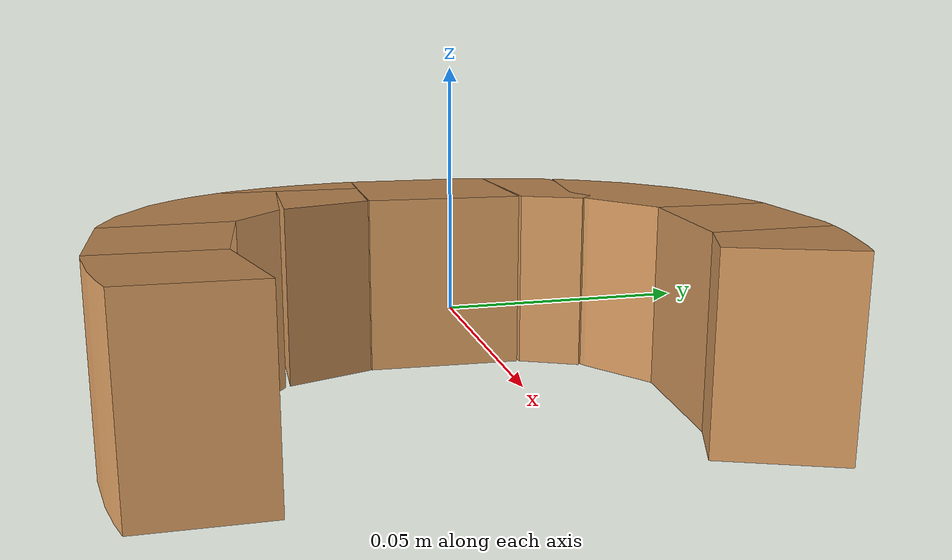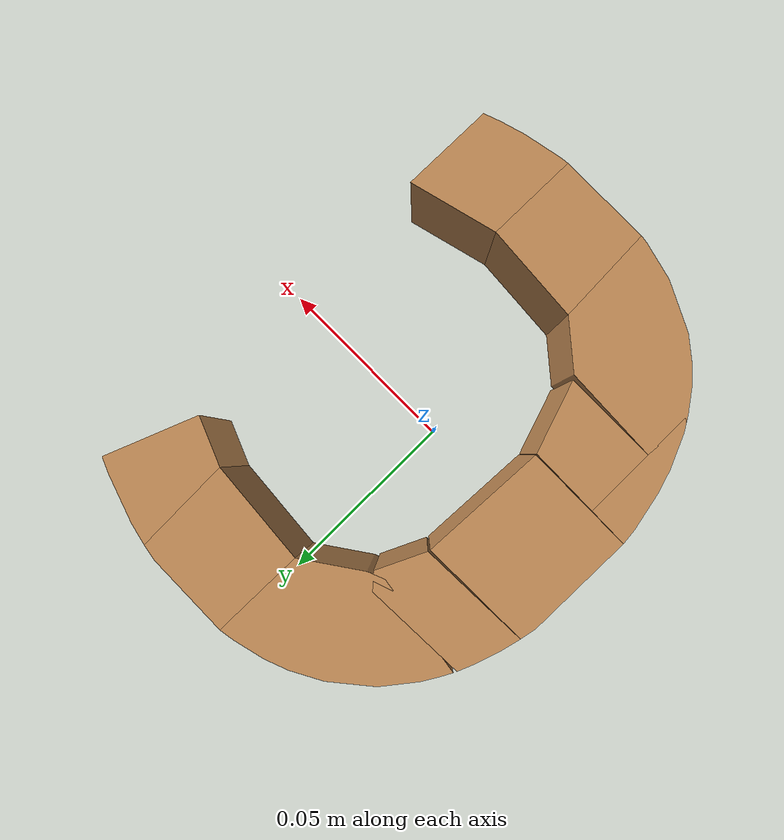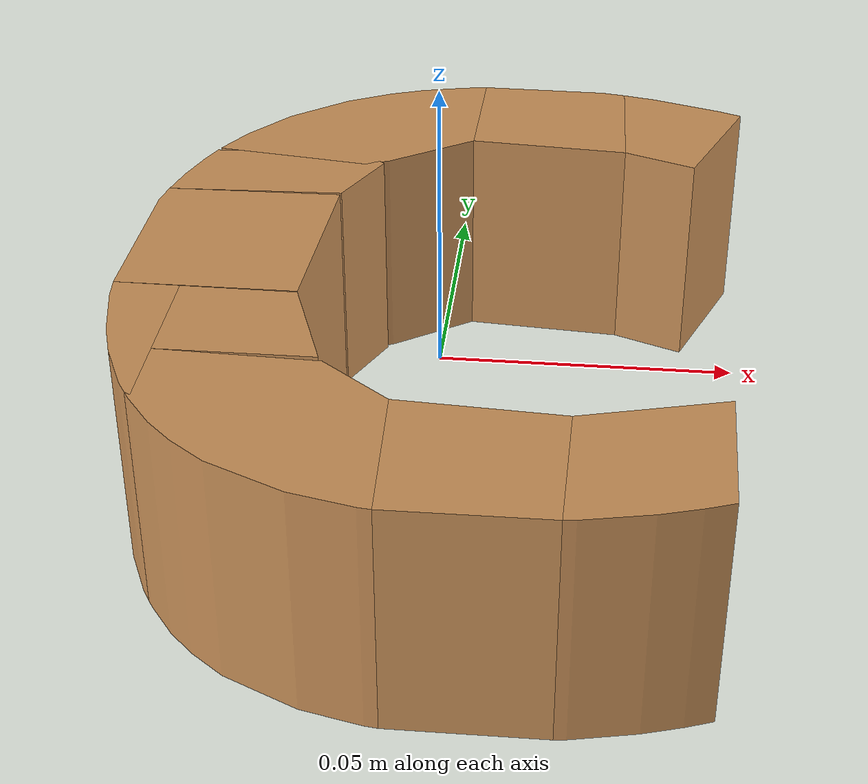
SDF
<?xml version='1.0' encoding='UTF-8'?>
<!-- This SDF was autogenerated by obj_to_drake_sdf.py -->
<sdf version="1.7">
  <model name="smaller_c">
    <link name="smaller_c">
      <inertial>
        <pose>0 0 0 0 0 0</pose>
        <mass>0.2</mass>
        <inertia>
          <ixx>0.00045602505</ixx>
          <iyy>0.000186063</iyy>
          <izz>0.00058875471</izz>
          <ixy>-7.928974e-06</ixy>
          <ixz>9.4686308e-22</ixz>
          <iyz>-2.6563776e-21</iyz>
        </inertia>
      </inertial>
      <visual name="convex_0">
        <pose>0 0 0 0 0 0</pose>
        <geometry>
          <mesh>
            <uri>smaller_c_convex_0.obj</uri>
          </mesh>
        </geometry>
        <material>
          <diffuse>0.7843137254901961 0.5647058823529412 0.34509803921568627 1</diffuse>
        </material>
      </visual>
      <collision name="convex_0_volume">
        <pose>0 0 0 0 0 0</pose>
        <geometry>
          <mesh>
            <uri>smaller_c_convex_0.obj</uri>
          </mesh>
        </geometry>
        <drake:proximity_properties xmlns:drake="uri:drake">
          <drake:compliant_hydroelastic/>
          <drake:hydroelastic_modulus> 3.0e7 </drake:hydroelastic_modulus>
          <drake:mesh_resolution_hint> 0.02 </drake:mesh_resolution_hint>
          <drake:hunt_crossley_dissipation>10</drake:hunt_crossley_dissipation>
          <drake:mu_dynamic>0.5</drake:mu_dynamic>
        </drake:proximity_properties>
      </collision>
      <visual name="convex_1">
        <pose>0 0 0 0 0 0</pose>
        <geometry>
          <mesh>
            <uri>smaller_c_convex_1.obj</uri>
          </mesh>
        </geometry>
        <material>
          <diffuse>0.7843137254901961 0.5647058823529412 0.34509803921568627 1</diffuse>
        </material>
      </visual>
      <collision name="convex_1_volume">
        <pose>0 0 0 0 0 0</pose>
        <geometry>
          <mesh>
            <uri>smaller_c_convex_1.obj</uri>
          </mesh>
        </geometry>
        <drake:proximity_properties xmlns:drake="uri:drake">
          <drake:compliant_hydroelastic/>
          <drake:hydroelastic_modulus> 3.0e7 </drake:hydroelastic_modulus>
          <drake:mesh_resolution_hint> 0.02 </drake:mesh_resolution_hint>
          <drake:hunt_crossley_dissipation>10</drake:hunt_crossley_dissipation>
          <drake:mu_dynamic>0.5</drake:mu_dynamic>
        </drake:proximity_properties>
      </collision>
      <visual name="convex_2">
        <pose>0 0 0 0 0 0</pose>
        <geometry>
          <mesh>
            <uri>smaller_c_convex_2.obj</uri>
          </mesh>
        </geometry>
        <material>
          <diffuse>0.7843137254901961 0.5647058823529412 0.34509803921568627 1</diffuse>
        </material>
      </visual>
      <collision name="convex_2_volume">
        <pose>0 0 0 0 0 0</pose>
        <geometry>
          <mesh>
            <uri>smaller_c_convex_2.obj</uri>
          </mesh>
        </geometry>
        <drake:proximity_properties xmlns:drake="uri:drake">
          <drake:compliant_hydroelastic/>
          <drake:hydroelastic_modulus> 3.0e7 </drake:hydroelastic_modulus>
          <drake:mesh_resolution_hint> 0.02 </drake:mesh_resolution_hint>
          <drake:hunt_crossley_dissipation>10</drake:hunt_crossley_dissipation>
          <drake:mu_dynamic>0.5</drake:mu_dynamic>
        </drake:proximity_properties>
      </collision>
      <visual name="convex_3">
        <pose>0 0 0 0 0 0</pose>
        <geometry>
          <mesh>
            <uri>smaller_c_convex_3.obj</uri>
          </mesh>
        </geometry>
        <material>
          <diffuse>0.7843137254901961 0.5647058823529412 0.34509803921568627 1</diffuse>
        </material>
      </visual>
      <collision name="convex_3_volume">
        <pose>0 0 0 0 0 0</pose>
        <geometry>
          <mesh>
            <uri>smaller_c_convex_3.obj</uri>
          </mesh>
        </geometry>
        <drake:proximity_properties xmlns:drake="uri:drake">
          <drake:compliant_hydroelastic/>
          <drake:hydroelastic_modulus> 3.0e7 </drake:hydroelastic_modulus>
          <drake:mesh_resolution_hint> 0.02 </drake:mesh_resolution_hint>
          <drake:hunt_crossley_dissipation>10</drake:hunt_crossley_dissipation>
          <drake:mu_dynamic>0.5</drake:mu_dynamic>
        </drake:proximity_properties>
      </collision>
      <visual name="convex_4">
        <pose>0 0 0 0 0 0</pose>
        <geometry>
          <mesh>
            <uri>smaller_c_convex_4.obj</uri>
          </mesh>
        </geometry>
        <material>
          <diffuse>0.7843137254901961 0.5647058823529412 0.34509803921568627 1</diffuse>
        </material>
      </visual>
      <collision name="convex_4_volume">
        <pose>0 0 0 0 0 0</pose>
        <geometry>
          <mesh>
            <uri>smaller_c_convex_4.obj</uri>
          </mesh>
        </geometry>
        <drake:proximity_properties xmlns:drake="uri:drake">
          <drake:compliant_hydroelastic/>
          <drake:hydroelastic_modulus> 3.0e7 </drake:hydroelastic_modulus>
          <drake:mesh_resolution_hint> 0.02 </drake:mesh_resolution_hint>
          <drake:hunt_crossley_dissipation>10</drake:hunt_crossley_dissipation>
          <drake:mu_dynamic>0.5</drake:mu_dynamic>
        </drake:proximity_properties>
      </collision>
      <visual name="convex_5">
        <pose>0 0 0 0 0 0</pose>
        <geometry>
          <mesh>
            <uri>smaller_c_convex_5.obj</uri>
          </mesh>
        </geometry>
        <material>
          <diffuse>0.7843137254901961 0.5647058823529412 0.34509803921568627 1</diffuse>
        </material>
      </visual>
      <collision name="convex_5_volume">
        <pose>0 0 0 0 0 0</pose>
        <geometry>
          <mesh>
            <uri>smaller_c_convex_5.obj</uri>
          </mesh>
        </geometry>
        <drake:proximity_properties xmlns:drake="uri:drake">
          <drake:compliant_hydroelastic/>
          <drake:hydroelastic_modulus> 3.0e7 </drake:hydroelastic_modulus>
          <drake:mesh_resolution_hint> 0.02 </drake:mesh_resolution_hint>
          <drake:hunt_crossley_dissipation>10</drake:hunt_crossley_dissipation>
          <drake:mu_dynamic>0.5</drake:mu_dynamic>
        </drake:proximity_properties>
      </collision>
      <visual name="convex_6">
        <pose>0 0 0 0 0 0</pose>
        <geometry>
          <mesh>
            <uri>smaller_c_convex_6.obj</uri>
          </mesh>
        </geometry>
        <material>
          <diffuse>0.7843137254901961 0.5647058823529412 0.34509803921568627 1</diffuse>
        </material>
      </visual>
      <collision name="convex_6_volume">
        <pose>0 0 0 0 0 0</pose>
        <geometry>
          <mesh>
            <uri>smaller_c_convex_6.obj</uri>
          </mesh>
        </geometry>
        <drake:proximity_properties xmlns:drake="uri:drake">
          <drake:compliant_hydroelastic/>
          <drake:hydroelastic_modulus> 3.0e7 </drake:hydroelastic_modulus>
          <drake:mesh_resolution_hint> 0.02 </drake:mesh_resolution_hint>
          <drake:hunt_crossley_dissipation>10</drake:hunt_crossley_dissipation>
          <drake:mu_dynamic>0.5</drake:mu_dynamic>
        </drake:proximity_properties>
      </collision>
      <visual name="convex_7">
        <pose>0 0 0 0 0 0</pose>
        <geometry>
          <mesh>
            <uri>smaller_c_convex_7.obj</uri>
          </mesh>
        </geometry>
        <material>
          <diffuse>0.7843137254901961 0.5647058823529412 0.34509803921568627 1</diffuse>
        </material>
      </visual>
      <collision name="convex_7_volume">
        <pose>0 0 0 0 0 0</pose>
        <geometry>
          <mesh>
            <uri>smaller_c_convex_7.obj</uri>
          </mesh>
        </geometry>
        <drake:proximity_properties xmlns:drake="uri:drake">
          <drake:compliant_hydroelastic/>
          <drake:hydroelastic_modulus> 3.0e7 </drake:hydroelastic_modulus>
          <drake:mesh_resolution_hint> 0.02 </drake:mesh_resolution_hint>
          <drake:hunt_crossley_dissipation>10</drake:hunt_crossley_dissipation>
          <drake:mu_dynamic>0.5</drake:mu_dynamic>
        </drake:proximity_properties>
      </collision>
      <visual name="convex_8">
        <pose>0 0 0 0 0 0</pose>
        <geometry>
          <mesh>
            <uri>smaller_c_convex_8.obj</uri>
          </mesh>
        </geometry>
        <material>
          <diffuse>0.7843137254901961 0.5647058823529412 0.34509803921568627 1</diffuse>
        </material>
      </visual>
      <collision name="convex_8_volume">
        <pose>0 0 0 0 0 0</pose>
        <geometry>
          <mesh>
            <uri>smaller_c_convex_8.obj</uri>
          </mesh>
        </geometry>
        <drake:proximity_properties xmlns:drake="uri:drake">
          <drake:compliant_hydroelastic/>
          <drake:hydroelastic_modulus> 3.0e7 </drake:hydroelastic_modulus>
          <drake:mesh_resolution_hint> 0.02 </drake:mesh_resolution_hint>
          <drake:hunt_crossley_dissipation>10</drake:hunt_crossley_dissipation>
          <drake:mu_dynamic>0.5</drake:mu_dynamic>
        </drake:proximity_properties>
      </collision>
      <visual name="convex_9">
        <pose>0 0 0 0 0 0</pose>
        <geometry>
          <mesh>
            <uri>smaller_c_convex_9.obj</uri>
          </mesh>
        </geometry>
        <material>
          <diffuse>0.7843137254901961 0.5647058823529412 0.34509803921568627 1</diffuse>
        </material>
      </visual>
      <collision name="convex_9_volume">
        <pose>0 0 0 0 0 0</pose>
        <geometry>
          <mesh>
            <uri>smaller_c_convex_9.obj</uri>
          </mesh>
        </geometry>
        <drake:proximity_properties xmlns:drake="uri:drake">
          <drake:compliant_hydroelastic/>
          <drake:hydroelastic_modulus> 3.0e7 </drake:hydroelastic_modulus>
          <drake:mesh_resolution_hint> 0.02 </drake:mesh_resolution_hint>
          <drake:hunt_crossley_dissipation>10</drake:hunt_crossley_dissipation>
          <drake:mu_dynamic>0.5</drake:mu_dynamic>
        </drake:proximity_properties>
      </collision>
    </link>
  </model>
</sdf>
